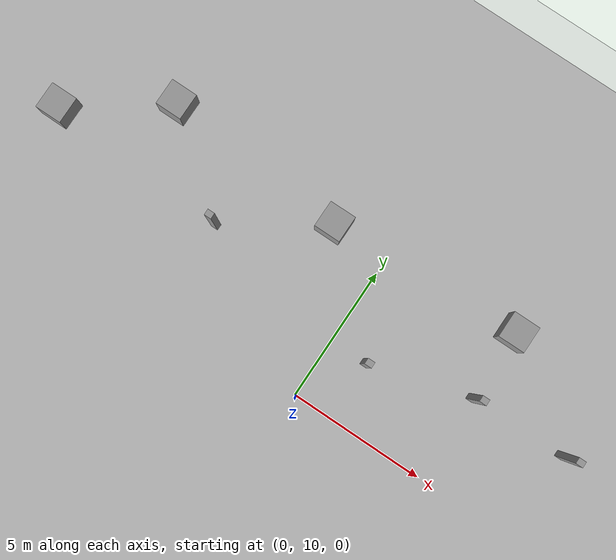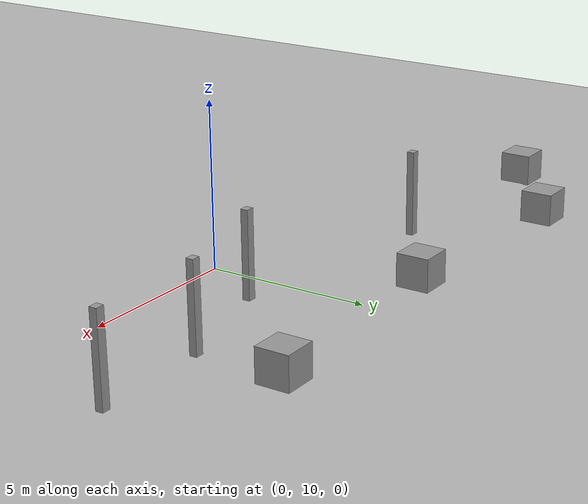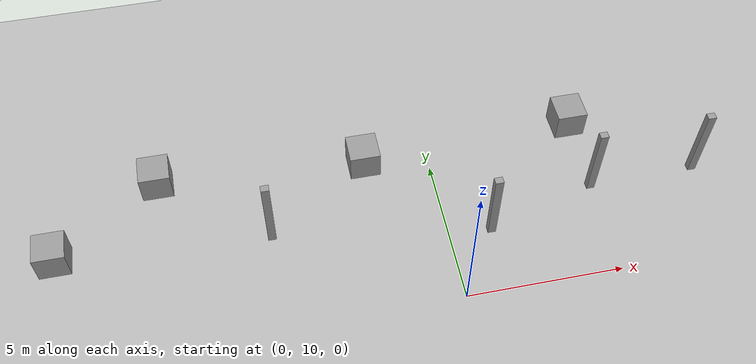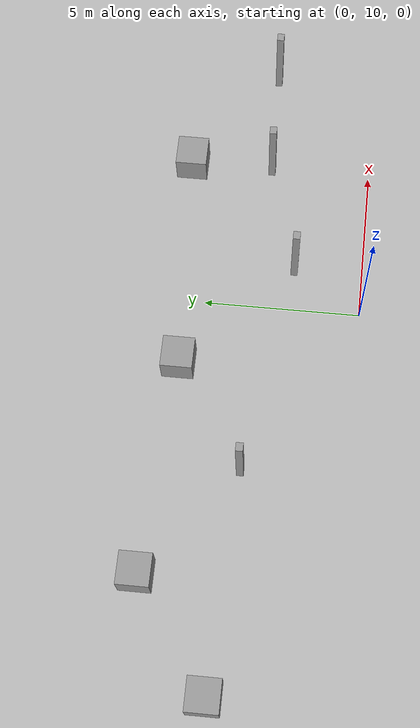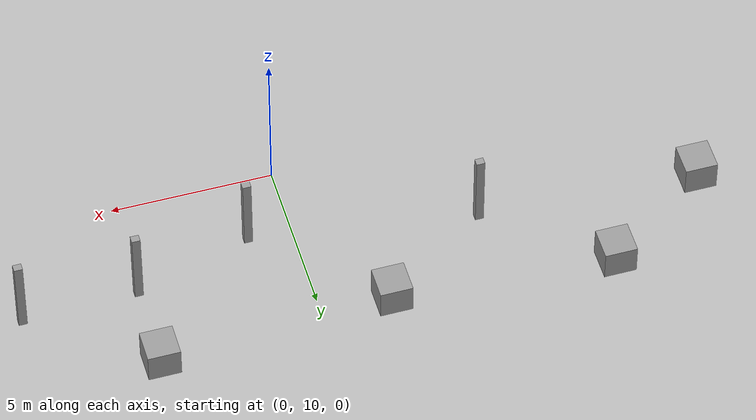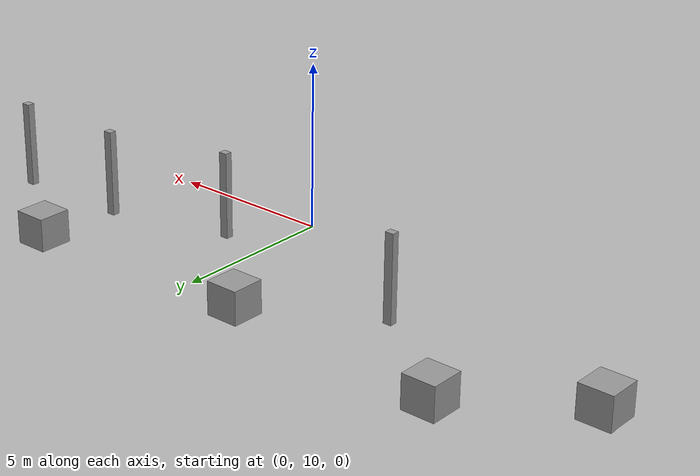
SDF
<sdf version='1.6'>
  <world name='default'>
    <scene>
      <shadows>0</shadows>
      <ambient>0.8 0.8 0.8 1</ambient>
      <background>1 1 1 1</background>
      <grid>0</grid>
      <origin_visual>0</origin_visual>
    </scene>
    <physics name='default_physics' default='0' type='ode'>
      <max_step_size>0.001</max_step_size>
      <real_time_factor>1</real_time_factor>
      <real_time_update_rate>500</real_time_update_rate>
    </physics>

   <model name='ground_plane'>
    <static>1</static>
    <link name='link'>
       <collision name='collision'>
           <geometry>
               <plane>
                   <normal>0 0 1</normal>
                   <size>50 50</size>
               </plane>
           </geometry>
           <surface>
            <friction>
                <ode>
                    <mu>100</mu>
                    <mu2>50</mu2>
                    </ode>
            </friction>
            <bounce/>
            <contact>
              <ode/>
            </contact>
          </surface>
         <max_contacts>10</max_contacts>
       </collision>
       <visual name='visual'>
           <cast_shadows>0</cast_shadows>
            <geometry>
               <plane>
                   <normal>0 0 1</normal>
                       <size>100 100</size>
              </plane>
           </geometry>
           <material>
           <script>
              <name>Gazebo/Grey</name>
              <uri>file://media/materials/scripts/gazebo.material</uri>
           </script>
           </material>
        </visual>
    <velocity_decay>
       <linear>0</linear>
       <angular>0</angular>
   </velocity_decay>
   <self_collide>0</self_collide>
   <kinematic>0</kinematic>
   <gravity>1</gravity>
 </link>
</model>

    <!-- A tunnel -->

    <include>
      <uri>model://tunnel</uri>
      <pose>0 0 0.01 0 0 0</pose>
    </include>

    <model name='unit_box'>
      <pose frame=''>-12.2787 13.6775 0.5 0 -0 0</pose>
      <link name='link'>
        <inertial>
          <mass>1</mass>
          <inertia>
            <ixx>0.166667</ixx>
            <ixy>0</ixy>
            <ixz>0</ixz>
            <iyy>0.166667</iyy>
            <iyz>0</iyz>
            <izz>0.166667</izz>
          </inertia>
        </inertial>
        <collision name='collision'>
          <geometry>
            <box>
              <size>1 1 1</size>
            </box>
          </geometry>
          <max_contacts>10</max_contacts>
          <surface>
            <contact>
              <ode/>
            </contact>
            <bounce/>
            <friction>
              <torsional>
                <ode/>
              </torsional>
              <ode/>
            </friction>
          </surface>
        </collision>
        <visual name='visual'>
          <geometry>
            <box>
              <size>1 1 1</size>
            </box>
          </geometry>
          <material>
            <script>
              <name>Gazebo/Grey</name>
              <uri>file://media/materials/scripts/gazebo.material</uri>
            </script>
          </material>
        </visual>
        <self_collide>0</self_collide>
        <enable_wind>0</enable_wind>
        <kinematic>0</kinematic>
      </link>
    </model>
    <model name='unit_box_0'>
      <pose frame=''>-8.95766 16.0532 0.5 0 -0 0</pose>
      <link name='link'>
        <inertial>
          <mass>1</mass>
          <inertia>
            <ixx>0.166667</ixx>
            <ixy>0</ixy>
            <ixz>0</ixz>
            <iyy>0.166667</iyy>
            <iyz>0</iyz>
            <izz>0.166667</izz>
          </inertia>
        </inertial>
        <collision name='collision'>
          <geometry>
            <box>
              <size>1 1 1</size>
            </box>
          </geometry>
          <max_contacts>10</max_contacts>
          <surface>
            <contact>
              <ode/>
            </contact>
            <bounce/>
            <friction>
              <torsional>
                <ode/>
              </torsional>
              <ode/>
            </friction>
          </surface>
        </collision>
        <visual name='visual'>
          <geometry>
            <box>
              <size>1 1 1</size>
            </box>
          </geometry>
          <material>
            <script>
              <name>Gazebo/Grey</name>
              <uri>file://media/materials/scripts/gazebo.material</uri>
            </script>
          </material>
        </visual>
        <self_collide>0</self_collide>
        <enable_wind>0</enable_wind>
        <kinematic>0</kinematic>
      </link>
    </model>
    <model name='unit_box_1'>
      <pose frame=''>-2.14886 15.5807 0.5 0 -0 0</pose>
      <link name='link'>
        <inertial>
          <mass>1</mass>
          <inertia>
            <ixx>0.166667</ixx>
            <ixy>0</ixy>
            <ixz>0</ixz>
            <iyy>0.166667</iyy>
            <iyz>0</iyz>
            <izz>0.166667</izz>
          </inertia>
        </inertial>
        <collision name='collision'>
          <geometry>
            <box>
              <size>0.999999 1 1</size>
            </box>
          </geometry>
          <max_contacts>10</max_contacts>
          <surface>
            <contact>
              <ode/>
            </contact>
            <bounce/>
            <friction>
              <torsional>
                <ode/>
              </torsional>
              <ode/>
            </friction>
          </surface>
        </collision>
        <visual name='visual'>
          <geometry>
            <box>
              <size>0.999999 1 1</size>
            </box>
          </geometry>
          <material>
            <script>
              <name>Gazebo/Grey</name>
              <uri>file://media/materials/scripts/gazebo.material</uri>
            </script>
          </material>
        </visual>
        <self_collide>0</self_collide>
        <enable_wind>0</enable_wind>
        <kinematic>0</kinematic>
      </link>
    </model>
    <model name='unit_box_1_clone'>
      <pose frame=''>1.36064 12.2096 0.5 0 -0 0</pose>
      <link name='link'>
        <inertial>
          <mass>1</mass>
          <inertia>
            <ixx>0.166667</ixx>
            <ixy>0</ixy>
            <ixz>0</ixz>
            <iyy>0.166667</iyy>
            <iyz>0</iyz>
            <izz>0.166667</izz>
          </inertia>
        </inertial>
        <collision name='collision'>
          <geometry>
            <box>
              <size>0.259018 0.2209 4.29071</size>
            </box>
          </geometry>
          <max_contacts>10</max_contacts>
          <surface>
            <contact>
              <ode/>
            </contact>
            <bounce/>
            <friction>
              <torsional>
                <ode/>
              </torsional>
              <ode/>
            </friction>
          </surface>
        </collision>
        <visual name='visual'>
          <geometry>
            <box>
              <size>0.259018 0.2209 4.29071</size>
            </box>
          </geometry>
          <material>
            <script>
              <name>Gazebo/Grey</name>
              <uri>file://media/materials/scripts/gazebo.material</uri>
            </script>
          </material>
        </visual>
        <self_collide>0</self_collide>
        <enable_wind>0</enable_wind>
        <kinematic>0</kinematic>
      </link>
    </model>
    <model name='unit_box_1_clone_0'>
      <pose frame=''>5.01132 13.2495 0.5 0 -0 0</pose>
      <link name='link'>
        <inertial>
          <mass>1</mass>
          <inertia>
            <ixx>0.166667</ixx>
            <ixy>0</ixy>
            <ixz>0</ixz>
            <iyy>0.166667</iyy>
            <iyz>0</iyz>
            <izz>0.166667</izz>
          </inertia>
        </inertial>
        <collision name='collision'>
          <geometry>
            <box>
              <size>0.259018 0.2209 4.29071</size>
            </box>
          </geometry>
          <max_contacts>10</max_contacts>
          <surface>
            <contact>
              <ode/>
            </contact>
            <bounce/>
            <friction>
              <torsional>
                <ode/>
              </torsional>
              <ode/>
            </friction>
          </surface>
        </collision>
        <visual name='visual'>
          <geometry>
            <box>
              <size>0.259018 0.2209 4.29071</size>
            </box>
          </geometry>
          <material>
            <script>
              <name>Gazebo/Grey</name>
              <uri>file://media/materials/scripts/gazebo.material</uri>
            </script>
          </material>
        </visual>
        <self_collide>0</self_collide>
        <enable_wind>0</enable_wind>
        <kinematic>0</kinematic>
      </link>
    </model>
    <model name='unit_box_1_clone_1'>
      <pose frame=''>8.57042 13.3155 0.5 0 -0 0</pose>
      <link name='link'>
        <inertial>
          <mass>1</mass>
          <inertia>
            <ixx>0.166667</ixx>
            <ixy>0</ixy>
            <ixz>0</ixz>
            <iyy>0.166667</iyy>
            <iyz>0</iyz>
            <izz>0.166667</izz>
          </inertia>
        </inertial>
        <collision name='collision'>
          <geometry>
            <box>
              <size>0.259018 0.2209 4.29071</size>
            </box>
          </geometry>
          <max_contacts>10</max_contacts>
          <surface>
            <contact>
              <ode/>
            </contact>
            <bounce/>
            <friction>
              <torsional>
                <ode/>
              </torsional>
              <ode/>
            </friction>
          </surface>
        </collision>
        <visual name='visual'>
          <geometry>
            <box>
              <size>0.259018 0.2209 4.29071</size>
            </box>
          </geometry>
          <material>
            <script>
              <name>Gazebo/Grey</name>
              <uri>file://media/materials/scripts/gazebo.material</uri>
            </script>
          </material>
        </visual>
        <self_collide>0</self_collide>
        <enable_wind>0</enable_wind>
        <kinematic>0</kinematic>
      </link>
    </model>
    <model name='unit_box_clone'>
      <pose frame=''>5.02337 15.9208 0.5 0 -0 0</pose>
      <link name='link'>
        <inertial>
          <mass>1</mass>
          <inertia>
            <ixx>0.166667</ixx>
            <ixy>0</ixy>
            <ixz>0</ixz>
            <iyy>0.166667</iyy>
            <iyz>0</iyz>
            <izz>0.166667</izz>
          </inertia>
        </inertial>
        <collision name='collision'>
          <geometry>
            <box>
              <size>1 1 1</size>
            </box>
          </geometry>
          <max_contacts>10</max_contacts>
          <surface>
            <contact>
              <ode/>
            </contact>
            <bounce/>
            <friction>
              <torsional>
                <ode/>
              </torsional>
              <ode/>
            </friction>
          </surface>
        </collision>
        <visual name='visual'>
          <geometry>
            <box>
              <size>1 1 1</size>
            </box>
          </geometry>
          <material>
            <script>
              <name>Gazebo/Grey</name>
              <uri>file://media/materials/scripts/gazebo.material</uri>
            </script>
          </material>
        </visual>
        <self_collide>0</self_collide>
        <enable_wind>0</enable_wind>
        <kinematic>0</kinematic>
      </link>
    </model>
    <model name='unit_box_1_clone_2'>
      <pose frame=''>-5.52952 13.3034 0.5 0 -0 0</pose>
      <link name='link'>
        <inertial>
          <mass>1</mass>
          <inertia>
            <ixx>0.166667</ixx>
            <ixy>0</ixy>
            <ixz>0</ixz>
            <iyy>0.166667</iyy>
            <iyz>0</iyz>
            <izz>0.166667</izz>
          </inertia>
        </inertial>
        <collision name='collision'>
          <geometry>
            <box>
              <size>0.259018 0.2209 4.29071</size>
            </box>
          </geometry>
          <max_contacts>10</max_contacts>
          <surface>
            <contact>
              <ode/>
            </contact>
            <bounce/>
            <friction>
              <torsional>
                <ode/>
              </torsional>
              <ode/>
            </friction>
          </surface>
        </collision>
        <visual name='visual'>
          <geometry>
            <box>
              <size>0.259018 0.2209 4.29071</size>
            </box>
          </geometry>
          <material>
            <script>
              <name>Gazebo/Grey</name>
              <uri>file://media/materials/scripts/gazebo.material</uri>
            </script>
          </material>
        </visual>
        <self_collide>0</self_collide>
        <enable_wind>0</enable_wind>
        <kinematic>0</kinematic>
      </link>
    </model>
  </world>
</sdf>

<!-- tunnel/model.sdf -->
<sdf version="1.5">
  <model name="tunnel">
    <static>true</static>
    <link name="link">

      <visual name="visual">
        <geometry>
          <mesh>
            <uri>model://tunnel/meshes/traffic_markers_v2.dae</uri>

          </mesh>
        </geometry>
      </visual>

    </link>
  </model>
</sdf>
